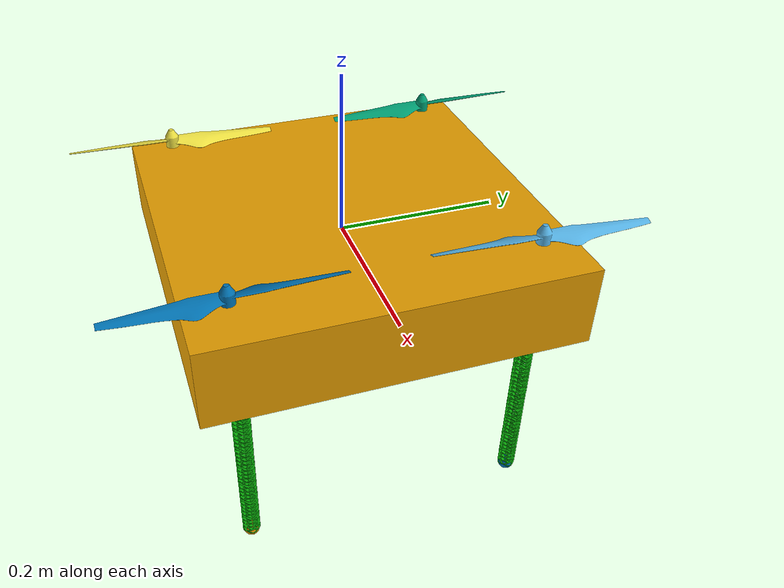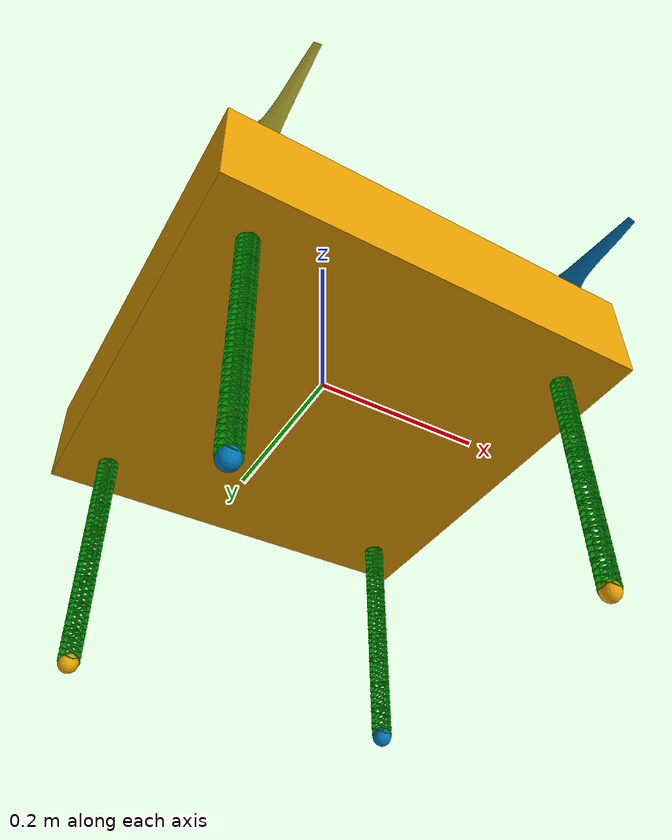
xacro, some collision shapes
<?xml version="1.0"?>
<robot xmlns:xacro="http://www.ros.org/wiki/xacro" name="drone_w_arms">

    <xacro:arg name="full_visuals" default="true"/>

    <xacro:property name="min_ax" value="-1000"/>
    <xacro:property name="max_ax" value="1000"/>
    <xacro:property name="max_effort" value="10000"/>
    <xacro:property name="max_velocity" value="100.0"/>
    <xacro:property name="lin_damping" value="0"/>
    <xacro:property name="rot_damping" value="0"/>

    <!-- Include the robot macro -->
    <xacro:include filename="drone.xacro"/>
    <xacro:include filename="dummy_arm.xacro"/>
    <!-- Add Drone Base -->
    <xacro:drone_base prefix="drone"/>

    <!-- Define dummy links for motion generation -->
    <link name="world"/>
    <link name="p1"/>
    <link name="p2"/>
    <link name="p3"/>

    <joint name="x_pos" type="prismatic">
        <parent link="world" />
        <child link="p1" />
        <axis xyz="1 0 0"/>
        <dynamics damping="${lin_damping}" friction="0.0"/>
        <limit lower="${min_ax}" upper="${max_ax}" effort="${max_effort}" velocity="${max_velocity}"/>
    </joint>

    <joint name="y_pos" type="prismatic">
        <parent link="p1" />
        <child link="p2" />
        <axis xyz="0 1 0"/>
        <dynamics damping="${lin_damping}" friction="0.0"/>
        <limit lower="${min_ax}" upper="${max_ax}" effort="${max_effort}" velocity="${max_velocity}"/>
    </joint>

    <joint name="z_pos" type="prismatic">
        <parent link="p2" />
        <child link="p3" />
        <axis xyz="0 0 1"/>
        <dynamics damping="${lin_damping}" friction="0.0"/>
        <limit lower="${min_ax}" upper="${max_ax}" effort="${max_effort}" velocity="${max_velocity}"/>
    </joint>

    <joint name="base_joint" type="continuous">
        <parent link="p3" />
        <child link="drone_base" />
        <axis xyz="0 0 1"/>
        <dynamics damping="${rot_damping}" friction="0.0"/>
        <limit lower="${min_ax}" upper="${max_ax}" effort="${max_effort}" velocity="${max_velocity}"/>
    </joint>

    <!-- Add dummy arms -->
    <xacro:flex_arm prefix="arm1" L="0.3" n="10" m="1.0" xyz=" 0.175  0.175 0" rpy="3.141 0 -0.7854"/>
    <xacro:flex_arm prefix="arm2" L="0.3" n="10" m="1.0" xyz=" 0.175 -0.175 0" rpy="3.141 0 -2.3562"/>
    <xacro:flex_arm prefix="arm3" L="0.3" n="10" m="1.0" xyz="-0.175 -0.175 0" rpy="3.141 0 2.3562"/>
    <xacro:flex_arm prefix="arm4" L="0.3" n="10" m="1.0" xyz="-0.175  0.175 0" rpy="3.141 0 0.7854"/>

    <joint name="arm1_joint" type="fixed">
        <parent link="drone_base"/>
        <child link="arm1_base" />
    </joint>
    <joint name="arm2_joint" type="fixed">
        <parent link="drone_base"/>
        <child link="arm2_base" />
    </joint>
    <joint name="arm3_joint" type="fixed">
        <parent link="drone_base"/>
        <child link="arm3_base" />
    </joint>
    <joint name="arm4_joint" type="fixed">
        <parent link="drone_base"/>
        <child link="arm4_base" />
    </joint>
</robot>

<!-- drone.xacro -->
<robot xmlns:xacro="http://www.ros.org/wiki/xacro">

    <xacro:property name="pi2" value="${pi * 0.5}" />

    <xacro:property name="l1" value="0.45" />
    <xacro:property name="l2" value="0.45" />
    <xacro:property name="l3" value="0.1" />

    <xacro:property name="arm_x" value="0.175"/>
    <xacro:property name="arm_y" value="0.175"/>

    <xacro:property name="m" value="2.0" />

    <xacro:macro name="box_inertia" params="l1 l2 l3 mass">
        <inertia ixx="${1/12*mass*(l3*l3 + l1*l1)}" ixy="0.0" ixz="0.0"
                iyy="${1/12*mass*(l3*l3 + l2*l2)}" iyz="0.0"
                izz="${1/12*mass*(l2*l2 + l1*l1)}" />
    </xacro:macro>

    <!-- Wrap the entire robot definition in a macro -->
    <xacro:macro name="drone_base" params="prefix">
        <link name="${prefix}_base">
            <visual>
                <xacro:if value="$(arg full_visuals)">
                    <origin xyz="0 0 0" rpy="${pi2} 0 0"/>
                </xacro:if>
                <xacro:unless value="$(arg full_visuals)">
                    <origin xyz="0 0 ${-l3*0.1}" rpy="0 0 0"/>
                </xacro:unless>
                <geometry>
                    <xacro:if value="$(arg full_visuals)">
                        <mesh filename="./meshes/Holybro-X500-V2-no-landinggear.dae" scale="0.001 0.001 0.001"/>
                    </xacro:if>
                    <xacro:unless value="$(arg full_visuals)">
                        <box size="${l1} ${l2} ${l3}"/>
                    </xacro:unless>
                </geometry>
            </visual>
            <collision>
                <origin xyz="0 0 ${-l3*0.1}" rpy="0 0 0"/>
                <geometry>
                    <box size="${l1} ${l2} ${l3}"/>
                </geometry>
            </collision>
            <inertial>
                <origin xyz="0 0 ${l1 * 0.5}" rpy="0 0 0"/>
                <mass value="${m}" />
                <xacro:box_inertia l1="${l1}" l2="${l2}" l3="${l3}" mass="${m}"/>
            </inertial>
        </link>

        <link name="${prefix}_prop1">
            <visual>
                <xacro:if value="$(arg full_visuals)">
                    <origin xyz="0 0 0.02" rpy="0 0 0"/>
                </xacro:if>
                <xacro:unless value="$(arg full_visuals)">
                    <origin xyz="0 0 0" rpy="0 0 0"/>
                </xacro:unless>

                <geometry>
                    <xacro:if value="$(arg full_visuals)">
                        <mesh filename="./meshes/1345_prop_ccw.dae" scale="0.75 0.75 0.75"/>
                    </xacro:if>
                    <xacro:unless value="$(arg full_visuals)">
                        <cylinder radius="0.125" length="0.01"/>
                    </xacro:unless>
                </geometry>
            </visual>
            <collision>
                <origin xyz="0 0 0" rpy="0 0 0"/>
                <geometry>
                    <cylinder radius="0.125" length="0.01"/>
                </geometry>
            </collision>
            <inertial>
                <origin xyz="0 0 0" rpy="0 0 0"/>
                <mass value="0" />
                <inertia ixx="0.0" ixy="0.0" ixz="0.0"
                         iyy="0.0" iyz="0.0" izz="0.0" />
            </inertial>
        </link>

        <link name="${prefix}_prop2">
            <visual>
                <xacro:if value="$(arg full_visuals)">
                    <origin xyz="0 0 0.02" rpy="0 0 0"/>
                </xacro:if>
                <xacro:unless value="$(arg full_visuals)">
                    <origin xyz="0 0 0" rpy="0 0 0"/>
                </xacro:unless>
                <geometry>
                    <xacro:if value="$(arg full_visuals)">
                        <mesh filename="./meshes/1345_prop_cw.dae" scale="0.75 0.75 0.75"/>
                    </xacro:if>
                    <xacro:unless value="$(arg full_visuals)">
                        <cylinder radius="0.125" length="0.01"/>
                    </xacro:unless>
                </geometry>
            </visual>
            <collision>
                <origin xyz="0 0 0" rpy="0 0 0"/>
                <geometry>
                    <cylinder radius="0.125" length="0.01"/>
                </geometry>
            </collision>
            <inertial>
                <origin xyz="0 0 0" rpy="0 0 0"/>
                <mass value="0" />
                <inertia ixx="0.0" ixy="0.0" ixz="0.0"
                         iyy="0.0" iyz="0.0" izz="0.0" />
            </inertial>
        </link>

        <link name="${prefix}_prop3">
            <visual>
                <xacro:if value="$(arg full_visuals)">
                    <origin xyz="0 0 0.02" rpy="0 0 0"/>
                </xacro:if>
                <xacro:unless value="$(arg full_visuals)">
                    <origin xyz="0 0 0" rpy="0 0 0"/>
                </xacro:unless>
                <geometry>
                    <xacro:if value="$(arg full_visuals)">
                        <mesh filename="./meshes/1345_prop_ccw.dae" scale="0.75 0.75 0.75"/>
                    </xacro:if>
                    <xacro:unless value="$(arg full_visuals)">
                        <cylinder radius="0.125" length="0.01"/>
                    </xacro:unless>
                </geometry>
            </visual>
            <collision>
                <origin xyz="0 0 0" rpy="0 0 0"/>
                <geometry>
                    <cylinder radius="0.125" length="0.01"/>
                </geometry>
            </collision>
            <inertial>
                <origin xyz="0 0 0" rpy="0 0 0"/>
                <mass value="0" />
                <inertia ixx="0.0" ixy="0.0" ixz="0.0"
                         iyy="0.0" iyz="0.0" izz="0.0" />
            </inertial>
        </link>

        <link name="${prefix}_prop4">
            <visual>
                <xacro:if value="$(arg full_visuals)">
                    <origin xyz="0 0 0.02" rpy="0 0 0"/>
                </xacro:if>
                <xacro:unless value="$(arg full_visuals)">
                    <origin xyz="0 0 0" rpy="0 0 0"/>
                </xacro:unless>
                <geometry>
                    <xacro:if value="$(arg full_visuals)">
                        <mesh filename="./meshes/1345_prop_cw.dae" scale="0.75 0.75 0.75"/>
                    </xacro:if>
                    <xacro:unless value="$(arg full_visuals)">
                        <cylinder radius="0.125" length="0.01"/>
                    </xacro:unless>
                </geometry>
            </visual>
            <collision>
                <origin xyz="0 0 0" rpy="0 0 0"/>
                <geometry>
                    <cylinder radius="0.125" length="0.01"/>
                </geometry>
            </collision>
            <inertial>
                <origin xyz="0 0 0" rpy="0 0 0"/>
                <mass value="0" />
                <inertia ixx="0.0" ixy="0.0" ixz="0.0"
                         iyy="0.0" iyz="0.0" izz="0.0" />
            </inertial>
        </link>

        <joint name="${prefix}_prop1joint" type="fixed">
            <parent link="${prefix}_base" />
            <child link="${prefix}_prop1" />
            <origin xyz="${arm_x} ${arm_y} 0.04" rpy="0 0 0" />
        </joint>

        <joint name="${prefix}_prop2joint" type="fixed">
            <parent link="${prefix}_base" />
            <child link="${prefix}_prop2" />
            <origin xyz="${-arm_x} ${arm_y} 0.04" rpy="0 0 0" />
        </joint>
        <joint name="${prefix}_prop3joint" type="fixed">
            <parent link="${prefix}_base" />
            <child link="${prefix}_prop3" />
            <origin xyz="${-arm_x} ${-arm_y} 0.04" rpy="0 0 0" />
        </joint>
        <joint name="${prefix}_prop4joint" type="fixed">
            <parent link="${prefix}_base" />
            <child link="${prefix}_prop4" />
            <origin xyz="${arm_x} ${-arm_y} 0.04" rpy="0 0 0" />
        </joint>

    </xacro:macro>
</robot>

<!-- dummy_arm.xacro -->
<robot xmlns:xacro="http://www.ros.org/wiki/xacro" name="dummy_arm">

    <!-- Macro to calculate cylinder inertia -->
    <xacro:macro name="cylinder_inertia" params="radius length mass">
        <inertia ixx="${0.25 * mass * radius * radius + (1 / 12) * mass * length * length}"
                 ixy="0.0" ixz="0.0"
                 iyy="${0.25 * mass * radius * radius + (1 / 12) * mass * length * length}"
                 iyz="0.0"
                 izz="${0.5 * mass * radius * radius}" />
    </xacro:macro>

    <!-- Macro to calculate sphere inertia -->
    <xacro:macro name="sphere_inertia" params="radius mass">
        <inertia ixx="${2/5 * mass * radius * radius}"
                 ixy="0.0" ixz="0.0"
                 iyy="${2/5 * mass * radius * radius}"
                 iyz="0.0"
                 izz="${2/5 * mass * radius * radius}" />
    </xacro:macro>

    <xacro:property name="width" value="0.01" />
    <xacro:property name="sphere_radius" value="${width}" />

    <!-- Macro for generating the flexible arm -->
    <xacro:macro name="flex_arm" params="prefix L n m xyz rpy">
        <!-- Create the base link -->
        <link name="${prefix}_base"/>

        <!-- First joint between the base and the first link -->
        <xacro:property name="l" value="${L / n}" />
        <link name="${prefix}_link_1">
            <visual>
                <geometry>
                    <xacro:if value="$(arg full_visuals)">
                        <mesh filename="meshes/single_segment.dae" scale="0.0006 0.0006 ${0.003 / n}"/>
                    </xacro:if>
                    <xacro:unless value="$(arg full_visuals)">
                         <cylinder radius="${width}" length="${l}" />
                    </xacro:unless>
                </geometry>
                <origin xyz="0 0 ${l / 2}" />
            </visual>
            <collision>
                <geometry>
                    <cylinder radius="${width}" length="${l}" />
                </geometry>
                <origin xyz="0 0 ${l / 2}" />
            </collision>
            <inertial>
                <mass value="${m / (n+1)}" />
                <xacro:cylinder_inertia radius="${width}" length="${l}" mass="${m / (n+1)}" />
            </inertial>
        </link>

        <joint name="${prefix}_joint_1" type="revolute">
            <parent link="${prefix}_base" />
            <child link="${prefix}_link_1" />
            <axis xyz="1 0 0" />
            <origin xyz="${xyz}" rpy="${rpy}" />
            <limit effort="10.0" velocity="1.0" lower="-1.57" upper="1.57" />
        </joint>

        <!-- Generate the rest of the chain -->
        <xacro:recursive_flex_arm prefix="${prefix}" L="${L}" n="${n - 1}" current_link="1" />
    </xacro:macro>

    <!-- Recursive macro for generating subsequent links -->
    <xacro:macro name="recursive_flex_arm" params="prefix L n current_link">
        <xacro:if value="${n > 0}">

            <xacro:property name="N" value="${n + current_link}" />
            <xacro:property name="l" value="${L / N}" />

            <!-- Create the next link -->
            <link name="${prefix}_link_${current_link + 1}">
                <visual>
                    <geometry>
                        <xacro:if value="$(arg full_visuals)">
                            <mesh filename="meshes/single_segment.dae" scale="0.0006 0.0006 ${0.003 / N}"/>
                        </xacro:if>
                        <xacro:unless value="$(arg full_visuals)">
                            <cylinder radius="${width}" length="${l}" />
                        </xacro:unless>
                    </geometry>
                    <origin xyz="0 0 ${l / 2}" />
                </visual>
                <collision>
                    <geometry>
                        <cylinder radius="${width}" length="${l}" />
                    </geometry>
                    <origin xyz="0 0 ${l / 2}" />
                </collision>
                <inertial>
                    <mass value="${m / (N +1)}" />
                    <xacro:cylinder_inertia radius="${width}" length="${l}" mass="${m / (N +1)}" />
                </inertial>
            </link>

            <!-- Create the revolute joint -->
            <joint name="${prefix}_joint_${current_link + 1}" type="revolute">
                <parent link="${prefix}_link_${current_link}" />
                <child link="${prefix}_link_${current_link + 1}" />
                <axis xyz="1 0 0" />
                <origin xyz="0 0 ${l}" rpy="0 0 0" />
                <limit effort="10.0" velocity="1.0" lower="-1.57" upper="1.57" />
            </joint>

            <!-- Recursively generate the rest of the chain -->
            <xacro:recursive_flex_arm prefix="${prefix}" L="${L}" n="${n - 1}" current_link="${current_link + 1}" />
        </xacro:if>

        <!-- Add sphere at the end of the last link -->
        <xacro:unless value="${n > 0}">
            <link name="${prefix}_sphere">
                <visual>
                    <geometry>
                        <sphere radius="${sphere_radius}" />
                    </geometry>
                    <origin xyz="0 0 ${sphere_radius}" />
                </visual>
                <collision>
                    <geometry>
                        <sphere radius="${sphere_radius}" />
                    </geometry>
                    <origin xyz="0 0 ${sphere_radius}" />
                </collision>
                <inertial>
                    <mass value="${m / (N + 1)}" />
                    <xacro:sphere_inertia radius="${sphere_radius}" mass="${m / (N + 1)}" />
                </inertial>
            </link>

            <joint name="${prefix}_fixed_joint_sphere" type="fixed">
                <parent link="${prefix}_link_${current_link}" />
                <child link="${prefix}_sphere" />
                <origin xyz="0 0 ${l-sphere_radius}" rpy="0 0 0" />
            </joint>
        </xacro:unless>
    </xacro:macro>
</robot>
